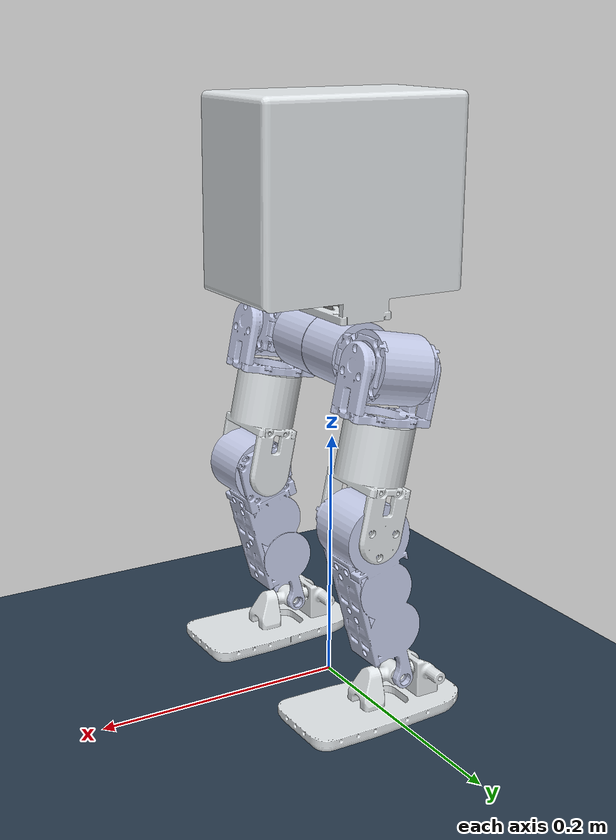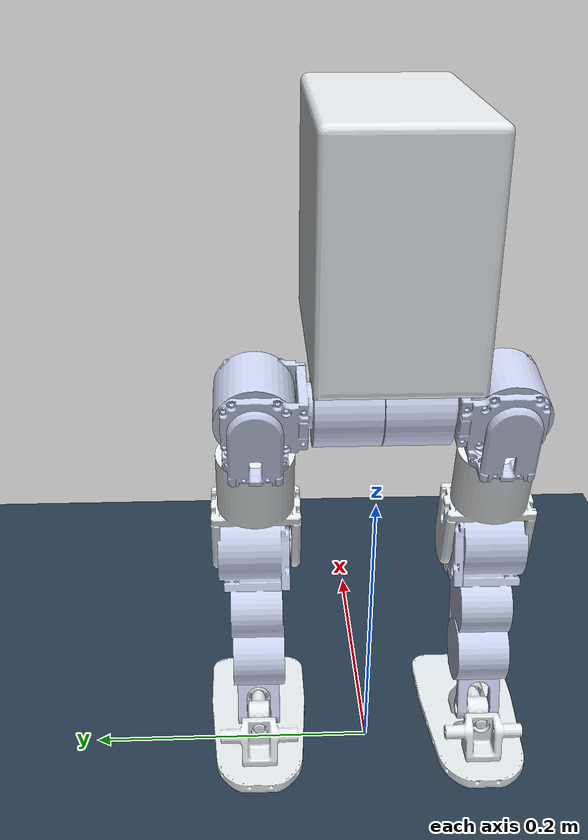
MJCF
<mujoco model="minipi_12dof_250110">
  <compiler angle="radian" meshdir="../meshes/" eulerseq="zyx"/>
  <option timestep='0.001' iterations='50' solver='PGS' gravity='0 0 -9.81'>
  </option>
  <size njmax="500" nconmax="100" />

  <visual>
    <quality shadowsize='4096'/>
    <map znear='0.05'/>
  </visual>

  <default>
    <joint limited='true'/>
    <motor ctrllimited='true'/>
    <geom condim='4' contype="1" conaffinity="15" solref='0.001 2' friction='0.9 0.2 0.2'/>
    <equality solref='0.001 2'/>
    <default class='visualgeom'>
      <geom material='visualgeom' condim='1' contype='0' conaffinity='0'/>
    </default>
    <default class='visualgeom2'>
      <geom material='visualgeom2' condim='1' contype='0' conaffinity='0'/>
    </default>
    <default class='obstacle'>
      <geom material='obstacle' condim='3' contype='1' conaffinity='15'/>
    </default>
  </default>
  <asset>
    <texture type="skybox" builtin="gradient" rgb1="0.3 0.5 0.7" rgb2="0 0 0" width="512" height="512"/>
    <texture name="texplane" type="2d" builtin="checker" rgb1=".2 .3 .4" rgb2=".1 0.15 0.2" width="512" height="512" mark="cross" markrgb=".8 .8 .8"/>
    <texture name="texplane2" type="2d" builtin="checker" rgb1="1 0.3137 0.1843" rgb2="0.0 0.30196 0.38039" width="512" height="512" mark="cross" markrgb=".8 .8 .8"/>

    <material name="matplane" reflectance="0." texture="texplane" texrepeat="1 1" texuniform="true"/>
    <material name="matplane2" reflectance="0.1" texture="texplane2" texrepeat="1 1" texuniform="true"/>

    <material name='obstacle' rgba='0.9 0.6 0.2 1'/>
    <material name='visualgeom' rgba='0.5 0.9 0.2 1'/>
    <material name='visualgeom2' rgba='0.5 0.9 0.2 1'/>

    <mesh name="base_link" file="base_link.STL"/>
    <mesh name="l_hip_pitch_link" file="l_hip_pitch_link.STL"/>
    <mesh name="l_hip_roll_link" file="l_hip_roll_link.STL"/>
    <mesh name="l_thigh_link" file="l_thigh_link.STL"/>
    <mesh name="l_calf_link" file="l_calf_link.STL"/>
    <mesh name="l_ankle_pitch_link" file="l_ankle_pitch_link.STL"/>
    <mesh name="l_ankle_roll_link" file="l_ankle_roll_link.STL"/>
    <mesh name="r_hip_pitch_link" file="r_hip_pitch_link.STL"/>
    <mesh name="r_hip_roll_link" file="r_hip_roll_link.STL"/>
    <mesh name="r_thigh_link" file="r_thigh_link.STL"/>
    <mesh name="r_calf_link" file="r_calf_link.STL"/>
    <mesh name="r_ankle_pitch_link" file="r_ankle_pitch_link.STL"/>
    <mesh name="r_ankle_roll_link" file="r_ankle_roll_link.STL"/>
    <hfield name='hf0' nrow='200' ncol='200' size="10 5 0.2 .1"/>
  </asset>
  <worldbody>
    <light directional="true" diffuse=".4 .4 .4" specular="0.1 0.1 0.1" pos="0 0 5.0" dir="0 0 -1" castshadow="false"/>
    <light directional="true" diffuse=".6 .6 .6" specular="0.2 0.2 0.2" pos="0 0 4" dir="0 0 -1"/>
    <geom name="ground" type="plane" size="0 0 1" pos="0.001 0 0" quat="1 0 0 0" material="matplane" condim="1" conaffinity='15'/>

    <body name="base_link" pos="0.0 0.0 0.306">
      <inertial pos="0.00110346 0 0.0799838" quat="0.502709 0.497276 0.497276 0.502709" mass="2.4649" diaginertia="0.00400225 0.002861 0.00255266"/>
      <joint type='slide' axis='1 0 0' limited='false' />
      <joint type='slide' axis='0 1 0' limited='false' />
      <joint type='slide' axis='0 0 1' limited='false' />
      <joint type='ball' limited='false' />

      <site name='imu' size='0.01' pos='0.0 0 0.0'/>

      <geom type="mesh" contype="0" conaffinity="0" group="1" density="0" rgba="0.89804 0.91765 0.92941 1" mesh="base_link"/>
      <geom type="mesh" rgba="0.89804 0.91765 0.92941 1" mesh="base_link"/>

      <body name="l_hip_pitch_link" pos="0.00214758 0.0437 -0.03225" quat="0.995004 0 -0.0998334 0">
        <inertial pos="-0.00074639 -0.013404 0" quat="0.46664 0.531269 -0.46664 0.531269" mass="0.268402" diaginertia="0.000193 0.000180554 0.000102766"/>
        <joint name="l_hip_pitch_joint" pos="0 0 0" axis="0 1 0" range="-1 0.6"/>
        <geom type="mesh" contype="0" conaffinity="0" group="1" density="0" rgba="0.79216 0.81961 0.93333 1" mesh="l_hip_pitch_link"/>
        <geom size="0.0005 0.0005 0.0005" type="box" rgba="0.79216 0.81961 0.93333 1"/>
        <body name="l_hip_roll_link" pos="0.0235 0.0363 0">
          <inertial pos="-0.023963 0 -0.0030691" quat="0.566834 0.422728 0.422728 0.566834" mass="0.27495" diaginertia="0.0001412 0.000122544 0.000106886"/>
          <joint name="l_hip_roll_joint" pos="0 0 0" axis="1 0 0" range="-0.4 0.4"/>
          <geom type="mesh" contype="0" conaffinity="0" group="1" density="0" rgba="0.79216 0.81961 0.93333 1" mesh="l_hip_roll_link"/>
          <geom size="0.0005 0.0005 0.0005" type="box" rgba="0.79216 0.81961 0.93333 1"/>
          <body name="l_thigh_link" pos="-0.0235 0 -0.0817">
            <inertial pos="0 -0.00069547 0.011181" quat="0.997543 -0.0700559 0 0" mass="0.29535" diaginertia="0.00023194 0.000198545 0.000124555"/>
            <joint name="l_thigh_joint" pos="0 0 0" axis="0 0 1" range="-0.5 0.5"/>
            <geom type="mesh" contype="0" conaffinity="0" group="1" density="0" rgba="0.89804 0.91765 0.92941 1" mesh="l_thigh_link"/>
            <geom size="0.0005 0.0005 0.0005" type="box" rgba="0.89804 0.91765 0.92941 1"/>
            <body name="l_calf_link" pos="0 0.0265 -0.0383" quat="0.972514 0 0.232843 0">
              <inertial pos="0.00071444 -0.0249664 -0.0409766" quat="0.470175 0.52819 0.551393 0.442625" mass="0.590641" diaginertia="0.000412393 0.000412393 0.000412393"/>
              <joint name="l_calf_joint" pos="0 0 0" axis="0 1 0" range="-0.4 1.5"/>
              <geom type="mesh" contype="0" conaffinity="0" group="1" density="0" rgba="0.79216 0.81961 0.93333 1" mesh="l_calf_link"/>
              <geom size="0.0005 0.0005 0.0005" type="box" rgba="0.79216 0.81961 0.93333 1"/>
              <body name="l_ankle_pitch_link" pos="-0.00141263 -0.035 -0.125855" quat="0.990901 0 -0.13459 0">
                <inertial pos="0.0013128 0.0084996 -0.004145" quat="0.5 0.5 0.5 0.5" mass="0.0089231" diaginertia="1.02e-06 9.9e-07 2.3e-07"/>
                <joint name="l_ankle_pitch_joint" pos="0 0 0" axis="0 1 0" range="-0.55 1"/>
                <geom type="mesh" contype="0" conaffinity="0" group="1" density="0" rgba="0.89804 0.91765 0.92941 1" mesh="l_ankle_pitch_link"/>
                <geom size="0.0005 0.0005 0.0005" type="box" rgba="0.89804 0.91765 0.92941 1"/>
                <body name="l_ankle_roll_link" pos="0.0164376 0.0085 -0.00414498">
                  <inertial pos="0.00265884 -3.23e-06 -0.0221598" quat="-1.46905e-05 0.722579 9.73125e-06 0.691288" mass="0.25772" diaginertia="0.000456952 0.00038614 9.81077e-05"/>
                  <joint name="l_ankle_roll_joint" pos="0 0 0" axis="1 0 0" range="-1 1"/>
                  <geom type="mesh" contype="0" conaffinity="0" group="1" density="0" rgba="0.89804 0.91765 0.92941 1" mesh="l_ankle_roll_link"/>
                  <geom type="mesh" rgba="0.89804 0.91765 0.92941 1" mesh="l_ankle_roll_link"/>
                </body>
              </body>
            </body>
          </body>
        </body>
      </body>
      <body name="r_hip_pitch_link" pos="0.00214758 -0.0437 -0.03225" quat="0.995004 0 -0.0998334 0">
        <inertial pos="-0.00074639 0.006036 -1.3436e-10" quat="0.531269 0.46664 -0.531269 0.46664" mass="0.268402" diaginertia="0.000193 0.000180554 0.000102766"/>
        <joint name="r_hip_pitch_joint" pos="0 0 0" axis="0 1 0" range="-1 0.6"/>
        <geom type="mesh" contype="0" conaffinity="0" group="1" density="0" rgba="0.79216 0.81961 0.93333 1" mesh="r_hip_pitch_link"/>
        <geom size="0.0005 0.0005 0.0005" type="box" rgba="0.79216 0.81961 0.93333 1"/>
        <body name="r_hip_roll_link" pos="0.0235 -0.0363 0">
          <inertial pos="-0.023963 0 -0.0030691" quat="0.566834 0.422728 0.422728 0.566834" mass="0.27495" diaginertia="0.0001412 0.000122544 0.000106886"/>
          <joint name="r_hip_roll_joint" pos="0 0 0" axis="1 0 0" range="-0.4 0.4"/>
          <geom type="mesh" contype="0" conaffinity="0" group="1" density="0" rgba="0.79216 0.81961 0.93333 1" mesh="r_hip_roll_link"/>
          <geom size="0.0005 0.0005 0.0005" type="box" rgba="0.79216 0.81961 0.93333 1"/>
          <body name="r_thigh_link" pos="-0.0235 0 -0.0817">
            <inertial pos="0 0.00071139 0.011181" quat="0.997507 0.0705737 0 0" mass="0.29535" diaginertia="0.00023193 0.000198568 0.000124532"/>
            <joint name="r_thigh_joint" pos="0 0 0" axis="0 0 1" range="-0.5 0.5"/>
            <geom type="mesh" contype="0" conaffinity="0" group="1" density="0" rgba="0.89804 0.91765 0.92941 1" mesh="r_thigh_link"/>
            <geom size="0.0005 0.0005 0.0005" type="box" rgba="0.89804 0.91765 0.92941 1"/>
            <body name="r_calf_link" pos="0 -0.0265 -0.0383" quat="0.972514 0 0.232843 0">
              <inertial pos="0.00077628 0.024905 -0.040977" quat="0.703825 0.0119134 -0.023232 0.709894" mass="0.59064" diaginertia="0.000965694 0.000955435 0.000168671"/>
              <joint name="r_calf_joint" pos="0 0 0" axis="0 1 0" range="-0.4 1.5"/>
              <geom type="mesh" contype="0" conaffinity="0" group="1" density="0" rgba="0.79216 0.81961 0.93333 1" mesh="r_calf_link"/>
              <geom size="0.0005 0.0005 0.0005" type="box" rgba="0.79216 0.81961 0.93333 1"/>
              <body name="r_ankle_pitch_link" pos="0 0.0349 -0.13" quat="0.990901 0 -0.13459 0">
                <inertial pos="0 -0.0085004 0" quat="0.5 0.5 0.5 0.5" mass="0.0089231" diaginertia="1.02e-06 9.9e-07 2.3e-07"/>
                <joint name="r_ankle_pitch_joint" pos="0 0 0" axis="0 1 0" range="-0.55 1"/>
                <geom type="mesh" contype="0" conaffinity="0" group="1" density="0" rgba="0.89804 0.91765 0.92941 1" mesh="r_ankle_pitch_link"/>
                <geom size="0.0005 0.0005 0.0005" type="box" rgba="0.89804 0.91765 0.92941 1"/>
                <body name="r_ankle_roll_link" pos="0.015125 -0.0085 -0.0122844">
                  <inertial pos="0.0026588 -3.23e-06 -0.0098754" quat="-1.46905e-05 0.722579 9.73125e-06 0.691288" mass="0.25772" diaginertia="0.000456952 0.00038614 9.81077e-05"/>
                  <joint name="r_ankle_roll_joint" pos="0 0 0" axis="1 0 0" range="-1 1"/>
                  <geom type="mesh" contype="0" conaffinity="0" group="1" density="0" rgba="0.89804 0.91765 0.92941 1" mesh="r_ankle_roll_link"/>
                  <geom type="mesh" rgba="0.89804 0.91765 0.92941 1" mesh="r_ankle_roll_link"/>
                </body>
              </body>
            </body>
          </body>
        </body>
      </body>
    </body>
  </worldbody>
  <actuator>
    <motor name="r_hip_pitch_joint" joint="r_hip_pitch_joint" gear="1" ctrllimited="true" ctrlrange="-200 200"/>
    <motor name="r_hip_roll_joint" joint="r_hip_roll_joint" gear="1" ctrllimited="true" ctrlrange="-200 200"/>
    <motor name="r_thigh_joint" joint="r_thigh_joint" gear="1" ctrllimited="true" ctrlrange="-200 200"/>
    <motor name="r_calf_joint" joint="r_calf_joint" gear="1" ctrllimited="true" ctrlrange="-200 200"/>
    <motor name="r_ankle_pitch_joint" joint="r_ankle_pitch_joint" gear="1" ctrllimited="true" ctrlrange="-200 200"/>
    <motor name="r_ankle_roll_joint" joint="r_ankle_roll_joint" gear="1" ctrllimited="true" ctrlrange="-200 200"/>
    <motor name="l_hip_pitch_joint" joint="l_hip_pitch_joint" gear="1" ctrllimited="true" ctrlrange="-200 200"/>
    <motor name="l_hip_roll_joint" joint="l_hip_roll_joint" gear="1" ctrllimited="true" ctrlrange="-200 200"/>
    <motor name="l_thigh_joint" joint="l_thigh_joint" gear="1" ctrllimited="true" ctrlrange="-200 200"/>
    <motor name="l_calf_joint" joint="l_calf_joint" gear="1" ctrllimited="true" ctrlrange="-200 200"/>
    <motor name="l_ankle_pitch_joint" joint="l_ankle_pitch_joint" gear="1" ctrllimited="true" ctrlrange="-200 200"/>
    <motor name="l_ankle_roll_joint" joint="l_ankle_roll_joint" gear="1" ctrllimited="true" ctrlrange="-200 200"/>
  </actuator>

  <sensor>
    <!-- Position sensors -->
    <actuatorpos name="r_hip_pitch_joint_p" actuator="r_hip_pitch_joint" user="13"/>
    <actuatorpos name="r_hip_roll_joint_p" actuator="r_hip_roll_joint" user="13"/>
    <actuatorpos name="r_thigh_joint_p" actuator="r_thigh_joint" user="13"/>
    <actuatorpos name="r_calf_joint_p" actuator="r_calf_joint" user="13"/>
    <actuatorpos name="r_ankle_pitch_joint_p" actuator="r_ankle_pitch_joint" user="13"/>
    <actuatorpos name="r_ankle_roll_joint_p" actuator="r_ankle_roll_joint" user="13"/>
    <actuatorpos name="l_hip_pitch_joint_p" actuator="l_hip_pitch_joint" user="13"/>
    <actuatorpos name="l_hip_roll_joint_p" actuator="l_hip_roll_joint" user="13"/>
    <actuatorpos name="l_thigh_joint_p" actuator="l_thigh_joint" user="13"/>
    <actuatorpos name="l_calf_joint_p" actuator="l_calf_joint" user="13"/>
    <actuatorpos name="l_ankle_pitch_joint_p" actuator="l_ankle_pitch_joint" user="13"/>
    <actuatorpos name="l_ankle_roll_joint_p" actuator="l_ankle_roll_joint" user="13"/>

    <!-- Velocity sensors -->
    <actuatorvel name="r_hip_pitch_joint_v" actuator="r_hip_pitch_joint" user="13" noise="1e-3"/>
    <actuatorvel name="r_hip_roll_joint_v" actuator="r_hip_roll_joint" user="13" noise="1e-3"/>
    <actuatorvel name="r_thigh_joint_v" actuator="r_thigh_joint" user="13" noise="1e-3"/>
    <actuatorvel name="r_calf_joint_v" actuator="r_calf_joint" user="13" noise="1e-3"/>
    <actuatorvel name="r_ankle_pitch_joint_v" actuator="r_ankle_pitch_joint" user="13" noise="1e-3"/>
    <actuatorvel name="r_ankle_roll_joint_v" actuator="r_ankle_roll_joint" user="13" noise="1e-3"/>
    <actuatorvel name="l_hip_pitch_joint_v" actuator="l_hip_pitch_joint" user="13" noise="1e-3"/>
    <actuatorvel name="l_hip_roll_joint_v" actuator="l_hip_roll_joint" user="13" noise="1e-3"/>
    <actuatorvel name="l_thigh_joint_v" actuator="l_thigh_joint" user="13" noise="1e-3"/>
    <actuatorvel name="l_calf_joint_v" actuator="l_calf_joint" user="13" noise="1e-3"/>
    <actuatorvel name="l_ankle_pitch_joint_v" actuator="l_ankle_pitch_joint" user="13" noise="1e-3"/>
    <actuatorvel name="l_ankle_roll_joint_v" actuator="l_ankle_roll_joint" user="13" noise="1e-3"/>

    <!-- Force sensors -->
    <actuatorfrc name="r_hip_pitch_joint_f" actuator="r_hip_pitch_joint" user="13" noise="1e-3"/>
    <actuatorfrc name="r_hip_roll_joint_f" actuator="r_hip_roll_joint" user="13" noise="1e-3"/>
    <actuatorfrc name="r_thigh_joint_f" actuator="r_thigh_joint" user="13" noise="1e-3"/>
    <actuatorfrc name="r_calf_joint_f" actuator="r_calf_joint" user="13" noise="1e-3"/>
    <actuatorfrc name="r_ankle_pitch_joint_f" actuator="r_ankle_pitch_joint" user="13" noise="1e-3"/>
    <actuatorfrc name="r_ankle_roll_joint_f" actuator="r_ankle_roll_joint" user="13" noise="1e-3"/>
    <actuatorfrc name="l_hip_pitch_joint_f" actuator="l_hip_pitch_joint" user="13" noise="1e-3"/>
    <actuatorfrc name="l_hip_roll_joint_f" actuator="l_hip_roll_joint" user="13" noise="1e-3"/>
    <actuatorfrc name="l_thigh_joint_f" actuator="l_thigh_joint" user="13" noise="1e-3"/>
    <actuatorfrc name="l_calf_joint_f" actuator="l_calf_joint" user="13" noise="1e-3"/>
    <actuatorfrc name="l_ankle_pitch_joint_f" actuator="l_ankle_pitch_joint" user="13" noise="1e-3"/>
    <actuatorfrc name="l_ankle_roll_joint_f" actuator="l_ankle_roll_joint" user="13" noise="1e-3"/>

    <framequat name='orientation' objtype='site' noise='0.001' objname='imu'/>
    <framepos name='position' objtype='site' noise='0.001' objname='imu'/>
    <gyro name='angular-velocity' site='imu' noise='0.005' cutoff='34.9'/>
    <velocimeter name='linear-velocity' site='imu' noise='0.001' cutoff='30'/>
    <accelerometer name='linear-acceleration' site='imu' noise='0.005' cutoff='157'/>
    <magnetometer name='magnetometer' site='imu'/>

  </sensor>
</mujoco>
